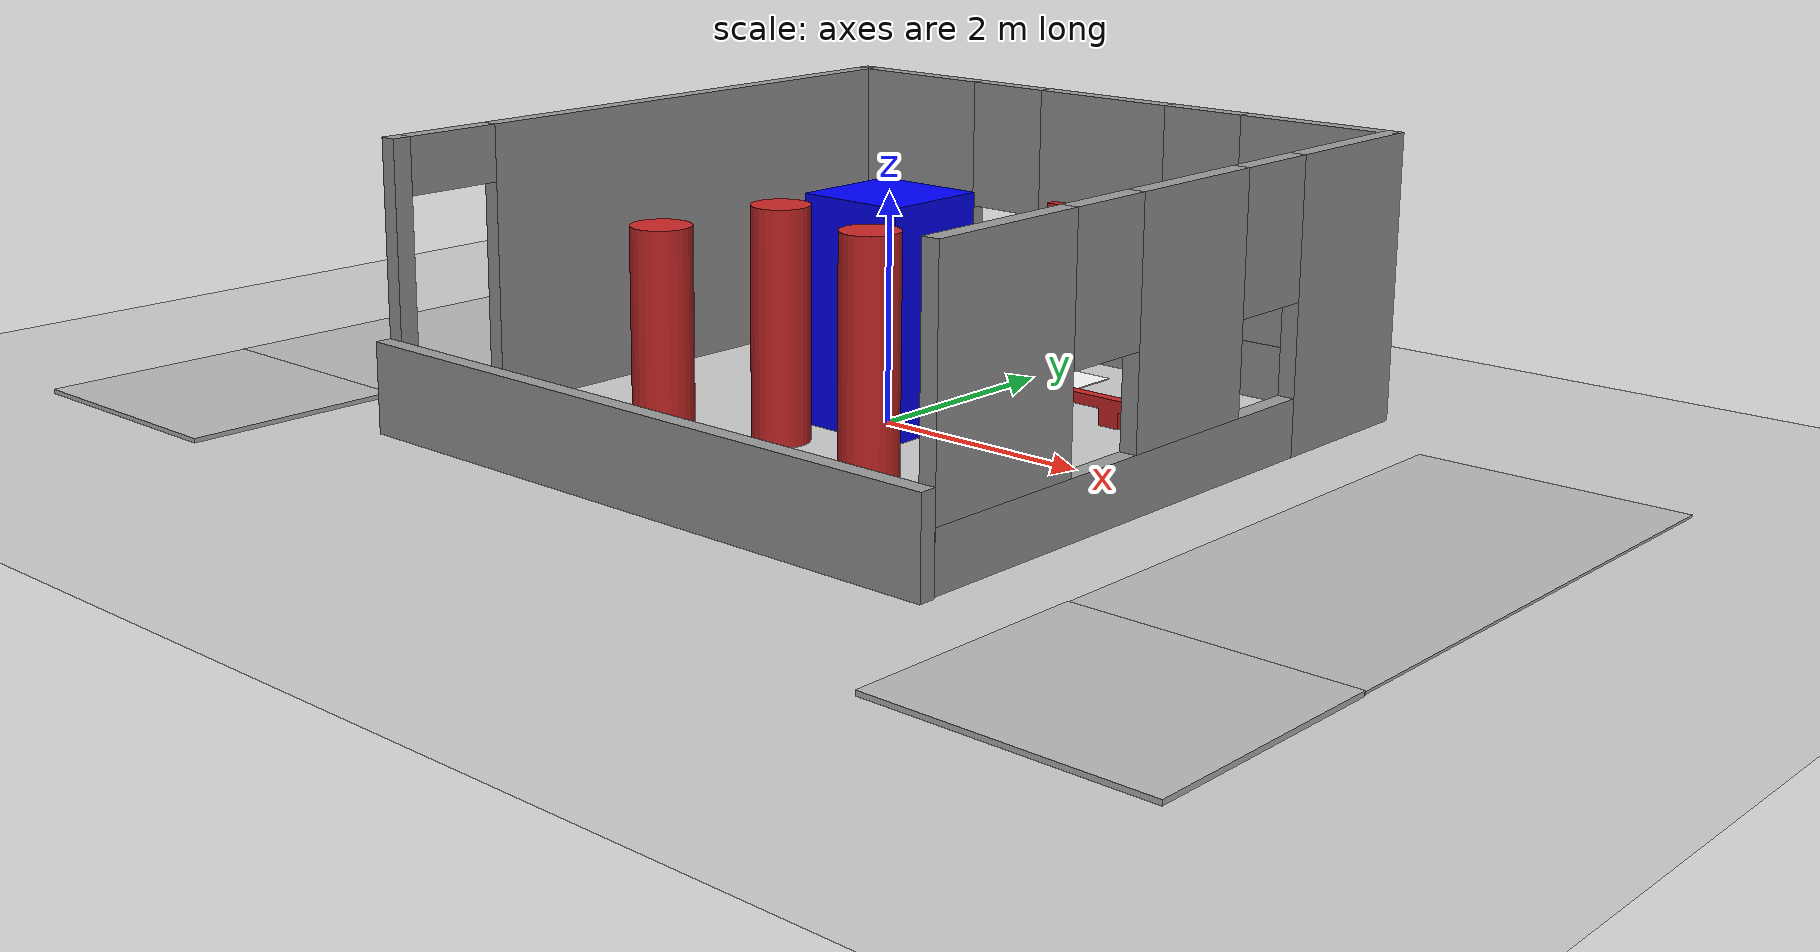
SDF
<sdf version="1.7">
 <world name="default">
  <plugin name="random_cylinder_plugin" filename="librandom_cylinder_plugin.so"/>
  <light name="sun" type="directional">
   <pose>0 0 10 0 -0 0</pose>
   <diffuse>0.8 0.8 0.8 1</diffuse>
   <specular>0.2 0.2 0.2 1</specular>
   <attenuation>
    <range>1000</range>
    <constant>0.9</constant>
    <linear>0.01</linear>
    <quadratic>0.001</quadratic>
   </attenuation>
   <direction>-0.5 0.1 -0.9</direction>
   <spot><inner_angle>0</inner_angle><outer_angle>0</outer_angle><falloff>0</falloff></spot>
  </light>
  <gravity>0 0 -9.8</gravity>
  <magnetic_field>6e-06 2.3e-05 -4.2e-05</magnetic_field>
  <atmosphere type="adiabatic"/>
  <physics type="ode">
   <max_step_size>0.001</max_step_size>
   <real_time_factor>1</real_time_factor>
   <real_time_update_rate>1000</real_time_update_rate>
  </physics>
  <scene>
   <ambient>0.4 0.4 0.4 1</ambient>
   <background>0.7 0.7 0.7 1</background>
   <shadows>1</shadows>
   <sky>
    <time>12</time>
    <clouds><speed>5</speed><direction>1</direction><density>0.5</density></clouds>
    <material>
     <script><uri>file://media/materials/scripts/gazebo.material</uri><name>Gazebo/SkyX</name></script>
    </material>
   </sky>
  </scene>
  <spherical_coordinates>
   <surface_model>EARTH_WGS84</surface_model>
   <latitude_deg>0</latitude_deg>
   <longitude_deg>0</longitude_deg>
   <elevation>0</elevation>
   <heading_deg>0</heading_deg>
  </spherical_coordinates>
  <model name="land_marker_H_50cm">
   <static>1</static>
   <link name="main_link">
    <visual name="base">
     <geometry><box><size>0.8 0.8 0.01</size></box></geometry>
     <material><ambient>1 1 1 1</ambient><diffuse>1 1 1 1</diffuse></material>
    </visual>
    <visual name="outer_ring">
     <pose>0 0 0.005 0 -0 0</pose>
     <geometry><cylinder><radius>0.3</radius><length>0.01</length></cylinder></geometry>
     <material><ambient>0 0 0 1</ambient><diffuse>0 0 0 1</diffuse></material>
    </visual>
    <visual name="inner_circle">
     <pose>0 0 0.006 0 -0 0</pose>
     <geometry><cylinder><radius>0.25</radius><length>0.01</length></cylinder></geometry>
     <material><ambient>1 1 1 1</ambient><diffuse>1 1 1 1</diffuse></material>
    </visual>
    <visual name="h_vertical">
     <pose>0 0 0.007 0 -0 0</pose>
     <geometry><box><size>0.05 0.3 0.01</size></box></geometry>
     <material><ambient>0 0 0 1</ambient><diffuse>0 0 0 1</diffuse></material>
    </visual>
    <visual name="h_top">
     <pose>0 0.15 0.007 0 -0 0</pose>
     <geometry><box><size>0.3 0.05 0.01</size></box></geometry>
     <material><ambient>0 0 0 1</ambient><diffuse>0 0 0 1</diffuse></material>
    </visual>
    <visual name="h_bottom">
     <pose>0 -0.15 0.007 0 -0 0</pose>
     <geometry><box><size>0.3 0.05 0.01</size></box></geometry>
     <material><ambient>0 0 0 1</ambient><diffuse>0 0 0 1</diffuse></material>
    </visual>
   </link>
   <pose>-2 -2 0 0 0 -1.57</pose>
  </model>
  <model name="cylinder_25cm">
   <static>1</static>
   <link name="link">
    <visual name="visual">
     <geometry><cylinder><radius>0.25</radius><length>2</length></cylinder></geometry>
     <material>
      <script><uri>file://media/materials/scripts/gazebo.material</uri><name>Gazebo/Red</name></script>
     </material>
    </visual>
    <collision name="collision">
     <geometry><cylinder><radius>0.25</radius><length>2</length></cylinder></geometry>
    </collision>
    <inertial>
     <mass>1</mass>
     <inertia><ixx>0.3358</ixx><ixy>0</ixy><ixz>0</ixz><iyy>0.3358</iyy><iyz>0</iyz><izz>0.005</izz></inertia>
    </inertial>
   </link>
   <pose>-0.305 -1 1 0 -0 0</pose>
  </model>
  <model name="cylinder_25cm_clone">
   <static>1</static>
   <link name="link">
    <visual name="visual">
     <geometry><cylinder><radius>0.25</radius><length>2</length></cylinder></geometry>
     <material>
      <script><uri>file://media/materials/scripts/gazebo.material</uri><name>Gazebo/Red</name></script>
     </material>
    </visual>
    <collision name="collision">
     <geometry><cylinder><radius>0.25</radius><length>2</length></cylinder></geometry>
    </collision>
    <inertial>
     <mass>1</mass>
     <inertia><ixx>0.3358</ixx><ixy>0</ixy><ixz>0</ixz><iyy>0.3358</iyy><iyz>0</iyz><izz>0.005</izz></inertia>
    </inertial>
   </link>
   <pose>-0.4 -2.25 1 0 -0 0</pose>
  </model>
  <model name="cylinder_25cm_clone_0">
   <static>1</static>
   <link name="link">
    <visual name="visual">
     <geometry><cylinder><radius>0.25</radius><length>2</length></cylinder></geometry>
     <material>
      <script><uri>file://media/materials/scripts/gazebo.material</uri><name>Gazebo/Red</name></script>
     </material>
    </visual>
    <collision name="collision">
     <geometry><cylinder><radius>0.25</radius><length>2</length></cylinder></geometry>
    </collision>
    <inertial>
     <mass>1</mass>
     <inertia><ixx>0.3358</ixx><ixy>0</ixy><ixz>0</ixz><iyy>0.3358</iyy><iyz>0</iyz><izz>0.005</izz></inertia>
    </inertial>
   </link>
   <pose>0.928 -1.284 1 0 -0 0</pose>
  </model>
  <model name="sqaure_window_2025_small">
   <link name="link">
    <inertial>
     <inertia><ixx>1</ixx><ixy>0</ixy><ixz>0</ixz><iyy>1</iyy><iyz>0</iyz><izz>1</izz></inertia>
     <mass>1</mass>
    </inertial>
    <visual name="visual">
     <geometry>
      <mesh><scale>1 1 1</scale><uri>model://sqaure_window_2025_small/meshes/0609.stl</uri></mesh>
     </geometry>
     <material>
      <script><name>Gazebo/Red</name><uri>file://media/materials/scripts/gazebo.material</uri></script>
      <shader type="pixel"/>
     </material>
    </visual>
    <collision name="collision">
     <geometry>
      <mesh>
       <uri>/home/yyf/2025futureaircraftcompetition/Simulation/sunray_simulator/models/scence_models/sqaure_window_2025_small/meshes/0609.stl</uri>
       <scale>1 1 1</scale>
      </mesh>
     </geometry>
     <surface>
      <friction>
       <ode><mu>1</mu><mu2>1</mu2><fdir1>0 0 0</fdir1><slip1>0</slip1><slip2>0</slip2></ode>
       <torsional>
        <coefficient>1</coefficient>
        <patch_radius>0</patch_radius>
        <surface_radius>0</surface_radius>
        <use_patch_radius>1</use_patch_radius>
        <ode><slip>0</slip></ode>
       </torsional>
      </friction>
      <bounce><restitution_coefficient>0</restitution_coefficient><threshold>1e+06</threshold></bounce>
      <contact>
       <collide_without_contact>0</collide_without_contact>
       <collide_without_contact_bitmask>1</collide_without_contact_bitmask>
       <collide_bitmask>1</collide_bitmask>
       <ode>
        <soft_cfm>0</soft_cfm>
        <soft_erp>0.2</soft_erp>
        <kp>1e+13</kp>
        <kd>1</kd>
        <max_vel>0.01</max_vel>
        <min_depth>0</min_depth>
       </ode>
       <bullet>
        <split_impulse>1</split_impulse>
        <split_impulse_penetration_threshold>-0.01</split_impulse_penetration_threshold>
        <soft_cfm>0</soft_cfm>
        <soft_erp>0.2</soft_erp>
        <kp>1e+13</kp>
        <kd>1</kd>
       </bullet>
      </contact>
     </surface>
    </collision>
   </link>
   <static>1</static>
   <pose>1.26784 0.125975 0 0 -5.2e-05 -1.57</pose>
  </model>
  <model name="cuboid_100cm">
   <link name="link">
    <inertial>
     <mass>1</mass>
     <inertia><ixx>0.4167</ixx><iyy>0.4167</iyy><izz>0.1667</izz><ixy>0</ixy><ixz>0</ixz><iyz>0</iyz></inertia>
    </inertial>
    <visual name="visual">
     <geometry><box><size>1 1 2</size></box></geometry>
     <material>
      <ambient>0 0 1 1</ambient>
      <diffuse>0 0 1 1</diffuse>
      <specular>0.1 0.1 0.1 1</specular>
      <shader type="pixel"/>
      <script><name>ModelPreview_1::link::visual_MATERIAL_</name><uri>__default__</uri></script>
     </material>
    </visual>
    <collision name="collision">
     <geometry><box><size>1 1 2</size></box></geometry>
     <surface>
      <friction>
       <ode><mu>1</mu><mu2>1</mu2><fdir1>0 0 0</fdir1><slip1>0</slip1><slip2>0</slip2></ode>
       <torsional>
        <coefficient>1</coefficient>
        <patch_radius>0</patch_radius>
        <surface_radius>0</surface_radius>
        <use_patch_radius>1</use_patch_radius>
        <ode><slip>0</slip></ode>
       </torsional>
      </friction>
      <bounce><restitution_coefficient>0</restitution_coefficient><threshold>1e+06</threshold></bounce>
      <contact>
       <collide_without_contact>0</collide_without_contact>
       <collide_without_contact_bitmask>1</collide_without_contact_bitmask>
       <collide_bitmask>1</collide_bitmask>
       <ode>
        <soft_cfm>0</soft_cfm>
        <soft_erp>0.2</soft_erp>
        <kp>1e+13</kp>
        <kd>1</kd>
        <max_vel>0.01</max_vel>
        <min_depth>0</min_depth>
       </ode>
       <bullet>
        <split_impulse>1</split_impulse>
        <split_impulse_penetration_threshold>-0.01</split_impulse_penetration_threshold>
        <soft_cfm>0</soft_cfm>
        <soft_erp>0.2</soft_erp>
        <kp>1e+13</kp>
        <kd>1</kd>
       </bullet>
      </contact>
     </surface>
    </collision>
   </link>
   <static>1</static>
   <pose>0 0 1 0 -0 0</pose>
  </model>
  <model name="ground_plane_0">
   <static>1</static>
   <link name="link">
    <collision name="collision">
     <geometry><plane><normal>0 0 1</normal><size>100 100</size></plane></geometry>
    </collision>
    <visual name="visual">
     <cast_shadows>0</cast_shadows>
     <geometry><plane><normal>0 0 1</normal><size>100 100</size></plane></geometry>
     <material>
      <script><uri>model://checkboard_grip/checkboard_grip.material</uri><name>checkboard_grip</name></script>
     </material>
    </visual>
   </link>
  </model>
  <model name="wind_zone_alpha0">
   <link name="link">
    <inertial>
     <mass>1</mass>
     <inertia><ixx>1</ixx><ixy>0</ixy><ixz>0</ixz><iyy>1</iyy><iyz>0</iyz><izz>1</izz></inertia>
    </inertial>
    <visual name="visual">
     <geometry><box><size>1 2 0.01</size></box></geometry>
     <material>
      <ambient>1 1 1 0</ambient>
      <diffuse>1 1 1 0</diffuse>
      <shader type="pixel"><normal_map>__default__</normal_map></shader>
      <script><name>ModelPreview_8::link::visual_MATERIAL_</name><uri>__default__</uri></script>
      <specular>0 0 0 1</specular>
      <emissive>0 0 0 1</emissive>
     </material>
    </visual>
    <collision name="collision">
     <geometry><box><size>1 2 0.01</size></box></geometry>
     <surface>
      <friction>
       <ode><mu>1</mu><mu2>1</mu2><fdir1>0 0 0</fdir1><slip1>0</slip1><slip2>0</slip2></ode>
       <torsional>
        <coefficient>1</coefficient>
        <patch_radius>0</patch_radius>
        <surface_radius>0</surface_radius>
        <use_patch_radius>1</use_patch_radius>
        <ode><slip>0</slip></ode>
       </torsional>
      </friction>
      <bounce><restitution_coefficient>0</restitution_coefficient><threshold>1e+06</threshold></bounce>
      <contact>
       <collide_without_contact>0</collide_without_contact>
       <collide_without_contact_bitmask>1</collide_without_contact_bitmask>
       <collide_bitmask>1</collide_bitmask>
       <ode>
        <soft_cfm>0</soft_cfm>
        <soft_erp>0.2</soft_erp>
        <kp>1e+13</kp>
        <kd>1</kd>
        <max_vel>0.01</max_vel>
        <min_depth>0</min_depth>
       </ode>
       <bullet>
        <split_impulse>1</split_impulse>
        <split_impulse_penetration_threshold>-0.01</split_impulse_penetration_threshold>
        <soft_cfm>0</soft_cfm>
        <soft_erp>0.2</soft_erp>
        <kp>1e+13</kp>
        <kd>1</kd>
       </bullet>
      </contact>
     </surface>
    </collision>
   </link>
   <static>1</static>
   <plugin name="wind_zone_plugin" filename="libwind_zone_plugin.so"/>
   <pose>0 1.5 -0.01 0 -0 0</pose>
  </model>
  <model name="Room">
   <pose>4.58476 0.79623 0 0 -0 0</pose>
   <link name="Wall_1">
    <pose>-7.4375 -0.8075 0 0 -0 1.5708</pose>
    <visual name="Wall_1_Visual_0">
     <pose>-2.9125 0 1.25 0 -0 0</pose>
     <geometry><box><size>0.175 0.15 2.5</size></box></geometry>
     <material>
      <script><uri>file://media/materials/scripts/gazebo.material</uri><name>Gazebo/Grey</name></script>
      <ambient>1 1 1 1</ambient>
     </material>
     <meta><layer>0</layer></meta>
    </visual>
    <collision name="Wall_1_Collision_0">
     <geometry><box><size>0.175 0.15 2.5</size></box></geometry>
     <pose>-2.9125 0 1.25 0 -0 0</pose>
    </collision>
    <visual name="Wall_1_Visual_1">
     <pose>0.5375 0 1.25 0 -0 0</pose>
     <geometry><box><size>4.925 0.15 2.5</size></box></geometry>
     <material>
      <script><uri>file://media/materials/scripts/gazebo.material</uri><name>Gazebo/Grey</name></script>
      <ambient>1 1 1 1</ambient>
     </material>
     <meta><layer>0</layer></meta>
    </visual>
    <collision name="Wall_1_Collision_1">
     <geometry><box><size>4.925 0.15 2.5</size></box></geometry>
     <pose>0.5375 0 1.25 0 -0 0</pose>
    </collision>
    <visual name="Wall_1_Visual_2">
     <pose>-2.375 0 2.25 0 -0 0</pose>
     <geometry><box><size>0.9 0.15 0.5</size></box></geometry>
     <material>
      <script><uri>file://media/materials/scripts/gazebo.material</uri><name>Gazebo/Grey</name></script>
      <ambient>1 1 1 1</ambient>
     </material>
     <meta><layer>0</layer></meta>
    </visual>
    <collision name="Wall_1_Collision_2">
     <geometry><box><size>0.9 0.15 0.5</size></box></geometry>
     <pose>-2.375 0 2.25 0 -0 0</pose>
    </collision>
   </link>
   <link name="Wall_2">
    <pose>-4.5125 2.1175 0 0 -0 0</pose>
    <visual name="Wall_2_Visual_0">
     <pose>-2.2475 0 1.25 0 -0 0</pose>
     <geometry><box><size>1.505 0.15 2.5</size></box></geometry>
     <material>
      <script><uri>file://media/materials/scripts/gazebo.material</uri><name>Gazebo/Grey</name></script>
      <ambient>1 1 1 1</ambient>
     </material>
     <meta><layer>0</layer></meta>
    </visual>
    <collision name="Wall_2_Collision_0">
     <geometry><box><size>1.505 0.15 2.5</size></box></geometry>
     <pose>-2.2475 0 1.25 0 -0 0</pose>
    </collision>
    <visual name="Wall_2_Visual_1">
     <pose>0.7525 0 0.25 0 -0 0</pose>
     <geometry><box><size>4.495 0.15 0.5</size></box></geometry>
     <material>
      <script><uri>file://media/materials/scripts/gazebo.material</uri><name>Gazebo/Grey</name></script>
      <ambient>1 1 1 1</ambient>
     </material>
     <meta><layer>0</layer></meta>
    </visual>
    <collision name="Wall_2_Collision_1">
     <geometry><box><size>4.495 0.15 0.5</size></box></geometry>
     <pose>0.7525 0 0.25 0 -0 0</pose>
    </collision>
    <visual name="Wall_2_Visual_2">
     <pose>-0 0 1.5 0 -0 0</pose>
     <geometry><box><size>1.39 0.15 2</size></box></geometry>
     <material>
      <script><uri>file://media/materials/scripts/gazebo.material</uri><name>Gazebo/Grey</name></script>
      <ambient>1 1 1 1</ambient>
     </material>
     <meta><layer>0</layer></meta>
    </visual>
    <collision name="Wall_2_Collision_2">
     <geometry><box><size>1.39 0.15 2</size></box></geometry>
     <pose>-0 0 1.5 0 -0 0</pose>
    </collision>
    <visual name="Wall_2_Visual_3">
     <pose>2.2475 0 1.5 0 -0 0</pose>
     <geometry><box><size>1.505 0.15 2</size></box></geometry>
     <material>
      <script><uri>file://media/materials/scripts/gazebo.material</uri><name>Gazebo/Grey</name></script>
      <ambient>1 1 1 1</ambient>
     </material>
     <meta><layer>0</layer></meta>
    </visual>
    <collision name="Wall_2_Collision_3">
     <geometry><box><size>1.505 0.15 2</size></box></geometry>
     <pose>2.2475 0 1.5 0 -0 0</pose>
    </collision>
    <visual name="Wall_2_Visual_4">
     <pose>-1.095 0 1.9 0 -0 0</pose>
     <geometry><box><size>0.8 0.15 1.2</size></box></geometry>
     <material>
      <script><uri>file://media/materials/scripts/gazebo.material</uri><name>Gazebo/Grey</name></script>
      <ambient>1 1 1 1</ambient>
     </material>
     <meta><layer>0</layer></meta>
    </visual>
    <collision name="Wall_2_Collision_4">
     <geometry><box><size>0.8 0.15 1.2</size></box></geometry>
     <pose>-1.095 0 1.9 0 -0 0</pose>
    </collision>
    <visual name="Wall_2_Visual_5">
     <pose>1.095 0 1.9 0 -0 0</pose>
     <geometry><box><size>0.8 0.15 1.2</size></box></geometry>
     <material>
      <script><uri>file://media/materials/scripts/gazebo.material</uri><name>Gazebo/Grey</name></script>
      <ambient>1 1 1 1</ambient>
     </material>
     <meta><layer>0</layer></meta>
    </visual>
    <collision name="Wall_2_Collision_5">
     <geometry><box><size>0.8 0.15 1.2</size></box></geometry>
     <pose>1.095 0 1.9 0 -0 0</pose>
    </collision>
   </link>
   <link name="Wall_4">
    <pose>-1.5875 -0.8075 0 0 -0 -1.5708</pose>
    <visual name="Wall_4_Visual_0">
     <pose>-2.2425 0 1.25 0 -0 0</pose>
     <geometry><box><size>1.515 0.15 2.5</size></box></geometry>
     <material>
      <script><uri>file://media/materials/scripts/gazebo.material</uri><name>Gazebo/Grey</name></script>
      <ambient>1 1 1 1</ambient>
     </material>
     <meta><layer>0</layer></meta>
    </visual>
    <collision name="Wall_4_Collision_0">
     <geometry><box><size>1.515 0.15 2.5</size></box></geometry>
     <pose>-2.2425 0 1.25 0 -0 0</pose>
    </collision>
    <visual name="Wall_4_Visual_1">
     <pose>0.7575 0 0.25 0 -0 0</pose>
     <geometry><box><size>4.485 0.15 0.5</size></box></geometry>
     <material>
      <script><uri>file://media/materials/scripts/gazebo.material</uri><name>Gazebo/Grey</name></script>
      <ambient>1 1 1 1</ambient>
     </material>
     <meta><layer>0</layer></meta>
    </visual>
    <collision name="Wall_4_Collision_1">
     <geometry><box><size>4.485 0.15 0.5</size></box></geometry>
     <pose>0.7575 0 0.25 0 -0 0</pose>
    </collision>
    <visual name="Wall_4_Visual_2">
     <pose>0 0 1.5 0 -0 0</pose>
     <geometry><box><size>1.37 0.15 2</size></box></geometry>
     <material>
      <script><uri>file://media/materials/scripts/gazebo.material</uri><name>Gazebo/Grey</name></script>
      <ambient>1 1 1 1</ambient>
     </material>
     <meta><layer>0</layer></meta>
    </visual>
    <collision name="Wall_4_Collision_2">
     <geometry><box><size>1.37 0.15 2</size></box></geometry>
     <pose>0 0 1.5 0 -0 0</pose>
    </collision>
    <visual name="Wall_4_Visual_3">
     <pose>2.2425 0 1.5 0 -0 0</pose>
     <geometry><box><size>1.515 0.15 2</size></box></geometry>
     <material>
      <script><uri>file://media/materials/scripts/gazebo.material</uri><name>Gazebo/Grey</name></script>
      <ambient>1 1 1 1</ambient>
     </material>
     <meta><layer>0</layer></meta>
    </visual>
    <collision name="Wall_4_Collision_3">
     <geometry><box><size>1.515 0.15 2</size></box></geometry>
     <pose>2.2425 0 1.5 0 -0 0</pose>
    </collision>
    <visual name="Wall_4_Visual_4">
     <pose>-1.085 0 1.9 0 -0 0</pose>
     <geometry><box><size>0.8 0.15 1.2</size></box></geometry>
     <material>
      <script><uri>file://media/materials/scripts/gazebo.material</uri><name>Gazebo/Grey</name></script>
      <ambient>1 1 1 1</ambient>
     </material>
     <meta><layer>0</layer></meta>
    </visual>
    <collision name="Wall_4_Collision_4">
     <geometry><box><size>0.8 0.15 1.2</size></box></geometry>
     <pose>-1.085 0 1.9 0 -0 0</pose>
    </collision>
    <visual name="Wall_4_Visual_5">
     <pose>1.085 0 1.9 0 -0 0</pose>
     <geometry><box><size>0.8 0.15 1.2</size></box></geometry>
     <material>
      <script><uri>file://media/materials/scripts/gazebo.material</uri><name>Gazebo/Grey</name></script>
      <ambient>1 1 1 1</ambient>
     </material>
     <meta><layer>0</layer></meta>
    </visual>
    <collision name="Wall_4_Collision_5">
     <geometry><box><size>0.8 0.15 1.2</size></box></geometry>
     <pose>1.085 0 1.9 0 -0 0</pose>
    </collision>
   </link>
   <static>1</static>
  </model>
  <model name="sqaure_window_2025_0">
   <link name="link">
    <collision name="collision">
     <geometry><mesh><uri>model://sqaure_window_2025/meshes/0515.stl</uri><scale>1 2 1</scale></mesh></geometry>
    </collision>
    <visual name="visual">
     <geometry><mesh><scale>1 2 1</scale><uri>model://sqaure_window_2025/meshes/0515.stl</uri></mesh></geometry>
     <material>
      <script><name>Gazebo/Red</name><uri>file://media/materials/scripts/gazebo.material</uri></script>
     </material>
    </visual>
    <inertial>
     <inertia><ixx>1</ixx><ixy>0</ixy><ixz>0</ixz><iyy>1</iyy><iyz>0</iyz><izz>1</izz></inertia>
     <mass>1</mass>
    </inertial>
   </link>
   <pose>1.46 1.27 -0 1e-06 -4.2e-05 -1.56931</pose>
  </model>
  <model name="target_swjtu_1_clone">
   <static>1</static>
   <link name="target_swjtu">
    <visual name="visual">
     <cast_shadows>0</cast_shadows>
     <geometry><box><size>2.28547 0.019642 4.72174</size></box></geometry>
     <material>
      <script><uri>model://yundrone_swjtu/yundrone_swjtu.material</uri><name>yundrone_swjtu</name></script>
     </material>
    </visual>
   </link>
   <pose>4.96114 -0.140057 0.01 -1.57 0 0</pose>
  </model>
  <model name="low_wall">
   <link name="Wall_1">
    <pose>0 -1.5525 -1.07149 0 -0 0</pose>
    <inertial>
     <inertia><ixx>0</ixx><ixy>0</ixy><ixz>0</ixz><iyy>0</iyy><iyz>0</iyz><izz>0</izz></inertia>
     <mass>0</mass>
    </inertial>
    <visual name="Wall_1_Visual">
     <pose>0 0 1.25 0 -0 0</pose>
     <geometry><box><size>6 0.15 0.816581</size></box></geometry>
     <material>
      <script><uri>file://media/materials/scripts/gazebo.material</uri><name>Gazebo/Grey</name></script>
      <ambient>1 1 1 1</ambient>
      <shader type="pixel"/>
     </material>
     <meta><layer>0</layer></meta>
    </visual>
    <collision name="Wall_1_Collision">
     <pose>0 0 1.25 0 -0 0</pose>
     <geometry><box><size>6 0.15 0.816581</size></box></geometry>
     <surface>
      <friction>
       <ode><mu>1</mu><mu2>1</mu2><fdir1>0 0 0</fdir1><slip1>0</slip1><slip2>0</slip2></ode>
       <torsional>
        <coefficient>1</coefficient>
        <patch_radius>0</patch_radius>
        <surface_radius>0</surface_radius>
        <use_patch_radius>1</use_patch_radius>
        <ode><slip>0</slip></ode>
       </torsional>
      </friction>
      <bounce><restitution_coefficient>0</restitution_coefficient><threshold>1e+06</threshold></bounce>
      <contact>
       <collide_without_contact>0</collide_without_contact>
       <collide_without_contact_bitmask>1</collide_without_contact_bitmask>
       <collide_bitmask>1</collide_bitmask>
       <ode>
        <soft_cfm>0</soft_cfm>
        <soft_erp>0.2</soft_erp>
        <kp>1e+13</kp>
        <kd>1</kd>
        <max_vel>0.01</max_vel>
        <min_depth>0</min_depth>
       </ode>
       <bullet>
        <split_impulse>1</split_impulse>
        <split_impulse_penetration_threshold>-0.01</split_impulse_penetration_threshold>
        <soft_cfm>0</soft_cfm>
        <soft_erp>0.2</soft_erp>
        <kp>1e+13</kp>
        <kd>1</kd>
       </bullet>
      </contact>
     </surface>
    </collision>
   </link>
   <static>1</static>
   <pose>0.070851 -1.53038 0.2 0 -0 0</pose>
  </model>
  <model name="target_swjtu_1_clone_clone">
   <static>1</static>
   <link name="target_swjtu">
    <visual name="visual">
     <cast_shadows>0</cast_shadows>
     <geometry><box><size>2.28547 0.019642 4.72174</size></box></geometry>
     <material>
      <script><uri>model://yundrone_swjtu/yundrone_swjtu.material</uri><name>yundrone_swjtu</name></script>
     </material>
    </visual>
   </link>
   <pose>-4.96321 -0.026739 0.010042 -1.57027 2.1e-05 0</pose>
  </model>
  <model name="nokov_logo">
   <static>1</static>
   <link name="nokov_logo">
    <visual name="visual">
     <cast_shadows>0</cast_shadows>
     <geometry><box><size>2.00001 2.25677 0.05</size></box></geometry>
     <material><script><uri>model://nokov_logo/nokov_logo.material</uri><name>nokov_logo</name></script></material>
    </visual>
   </link>
   <pose>-4.95261 -3.38548 0 0 -0 1.56738</pose>
  </model>
  <model name="nokov_logo_clone">
   <static>1</static>
   <link name="nokov_logo">
    <visual name="visual">
     <cast_shadows>0</cast_shadows>
     <geometry><box><size>2.14574 2.2836 0.05</size></box></geometry>
     <material><script><uri>model://nokov_logo/nokov_logo.material</uri><name>nokov_logo</name></script></material>
    </visual>
   </link>
   <pose>4.95859 -3.5651 0 0 -0 1.57</pose>
  </model>
  <model name="target_zone">
   <static>1</static>
   <link name="target_zone">
    <visual name="visual">
     <cast_shadows>0</cast_shadows>
     <geometry><box><size>0.5 0.5 0.5</size></box></geometry>
     <material><script><uri>model://target_img/target_img.material</uri><name>target_img</name></script></material>
    </visual>
   </link>
   <pose>-1.5 1.5 0.27 0 -0 0</pose>
  </model>
 </world>
</sdf>
